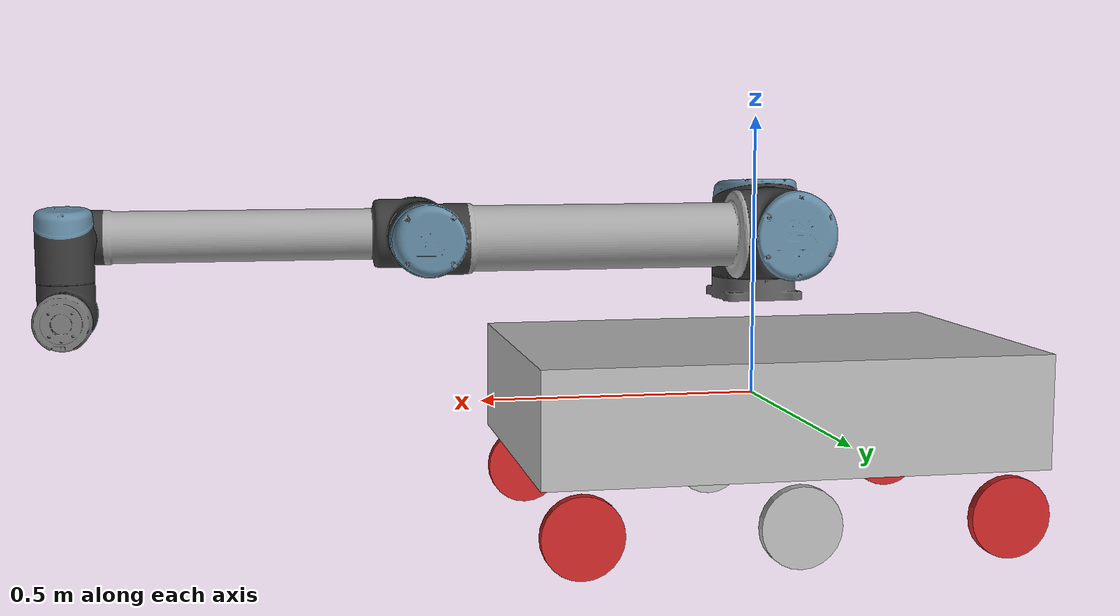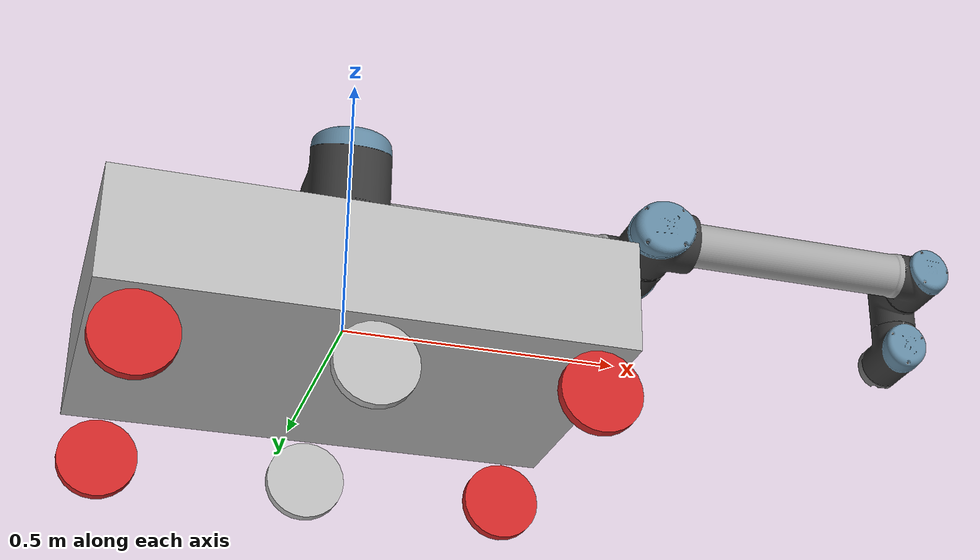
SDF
<sdf version='1.6'>
  <model name='mobile_ur10'>
    <link name='chassis'>
      <pose frame=''>0 0 0 0 -0 0</pose>
      <inertial>
        <pose frame=''>0 0 0.00429 0 -0 0</pose>
        <mass>69.8833</mass>
        <inertia>
          <ixx>2.37636</ixx>
          <ixy>0</ixy>
          <ixz>0</ixz>
          <iyy>4.93351</iyy>
          <iyz>-1.39888e-14</iyz>
          <izz>6.48737</izz>
        </inertia>
      </inertial>
      <collision name='chassis_fixed_joint_lump__collision_collision'>
        <pose frame=''>0 0 0 0 -0 0</pose>
        <geometry>
          <box>
            <size>0.89 0.58 0.2</size>
          </box>
        </geometry>
      </collision>
      <collision name='chassis_fixed_joint_lump__base_link_collision_1'>
        <pose frame=''>0 0 0.176 0 -0 0</pose>
        <geometry>
          <mesh>
            <scale>1 1 1</scale>
            <uri>model://ur_description/meshes/ur10/collision/base.stl</uri>
          </mesh>
        </geometry>
      </collision>
      <collision name='chassis_fixed_joint_lump__wheel_1_link_collision_2'>
        <pose frame=''>0.374 0.28 -0.181 -1.5708 0 0</pose>
        <geometry>
          <cylinder>
            <length>0.02</length>
            <radius>0.071</radius>
          </cylinder>
        </geometry>
        <surface>
          <contact>
            <ode/>
          </contact>
          <friction>
            <ode>
              <mu>0</mu>
              <mu2>0</mu2>
            </ode>
          </friction>
        </surface>
      </collision>
      <collision name='chassis_fixed_joint_lump__wheel_3_link_collision_3'>
        <pose frame=''>-0.374 0.28 -0.181 -1.5708 0 0</pose>
        <geometry>
          <cylinder>
            <length>0.02</length>
            <radius>0.071</radius>
          </cylinder>
        </geometry>
        <surface>
          <contact>
            <ode/>
          </contact>
          <friction>
            <ode>
              <mu>0</mu>
              <mu2>0</mu2>
            </ode>
          </friction>
        </surface>
      </collision>
      <collision name='chassis_fixed_joint_lump__wheel_4_link_collision_4'>
        <pose frame=''>-0.374 -0.28 -0.181 -1.5708 0 0</pose>
        <geometry>
          <cylinder>
            <length>0.02</length>
            <radius>0.071</radius>
          </cylinder>
        </geometry>
        <surface>
          <contact>
            <ode/>
          </contact>
          <friction>
            <ode>
              <mu>0</mu>
              <mu2>0</mu2>
            </ode>
          </friction>
        </surface>
      </collision>
      <collision name='chassis_fixed_joint_lump__wheel_6_link_collision_5'>
        <pose frame=''>0.374 -0.28 -0.181 -1.5708 0 0</pose>
        <geometry>
          <cylinder>
            <length>0.02</length>
            <radius>0.071</radius>
          </cylinder>
        </geometry>
        <surface>
          <contact>
            <ode/>
          </contact>
          <friction>
            <ode>
              <mu>0</mu>
              <mu2>0</mu2>
            </ode>
          </friction>
        </surface>
      </collision>
      <visual name='chassis_fixed_joint_lump__visual_visual'>
        <pose frame=''>0 0 0 0 -0 0</pose>
        <geometry>
          <box>
            <size>0.89 0.58 0.2</size>
          </box>
        </geometry>
      </visual>
      <visual name='chassis_fixed_joint_lump__base_link_visual_1'>
        <pose frame=''>0 0 0.176 0 -0 0</pose>
        <geometry>
          <mesh>
            <scale>1 1 1</scale>
            <uri>model://ur_description/meshes/ur10/visual/base.dae</uri>
          </mesh>
        </geometry>
      </visual>
      <visual name='chassis_fixed_joint_lump__wheel_1_link_visual_2'>
        <pose frame=''>0.374 0.28 -0.181 -1.5708 0 0</pose>
        <geometry>
          <cylinder>
            <length>0.02</length>
            <radius>0.071</radius>
          </cylinder>
        </geometry>
        <material>
          <script>
            <name>Gazebo/Red</name>
            <uri>file://media/materials/scripts/gazebo.material</uri>
          </script>
        </material>
      </visual>
      <visual name='chassis_fixed_joint_lump__wheel_3_link_visual_3'>
        <pose frame=''>-0.374 0.28 -0.181 -1.5708 0 0</pose>
        <geometry>
          <cylinder>
            <length>0.02</length>
            <radius>0.071</radius>
          </cylinder>
        </geometry>
        <material>
          <script>
            <name>Gazebo/Red</name>
            <uri>file://media/materials/scripts/gazebo.material</uri>
          </script>
        </material>
      </visual>
      <visual name='chassis_fixed_joint_lump__wheel_4_link_visual_4'>
        <pose frame=''>-0.374 -0.28 -0.181 -1.5708 0 0</pose>
        <geometry>
          <cylinder>
            <length>0.02</length>
            <radius>0.071</radius>
          </cylinder>
        </geometry>
        <material>
          <script>
            <name>Gazebo/Red</name>
            <uri>file://media/materials/scripts/gazebo.material</uri>
          </script>
        </material>
      </visual>
      <visual name='chassis_fixed_joint_lump__wheel_6_link_visual_5'>
        <pose frame=''>0.374 -0.28 -0.181 -1.5708 0 0</pose>
        <geometry>
          <cylinder>
            <length>0.02</length>
            <radius>0.071</radius>
          </cylinder>
        </geometry>
        <material>
          <script>
            <name>Gazebo/Red</name>
            <uri>file://media/materials/scripts/gazebo.material</uri>
          </script>
        </material>
      </visual>
      <velocity_decay/>
      <velocity_decay/>
      <velocity_decay/>
      <gravity>1</gravity>
      <velocity_decay/>
    </link>
    <link name='shoulder_link'>
      <pose frame=''>0 0 0.3033 0 -0 0</pose>
      <inertial>
        <pose frame=''>0 0 0 0 -0 0</pose>
        <mass>7.778</mass>
        <inertia>
          <ixx>0.0314743</ixx>
          <ixy>0</ixy>
          <ixz>0</ixz>
          <iyy>0.0314743</iyy>
          <iyz>0</iyz>
          <izz>0.0218756</izz>
        </inertia>
      </inertial>
      <collision name='shoulder_link_collision'>
        <pose frame=''>0 0 0 0 -0 0</pose>
        <geometry>
          <mesh>
            <scale>1 1 1</scale>
            <uri>model://ur_description/meshes/ur10/collision/shoulder.stl</uri>
          </mesh>
        </geometry>
      </collision>
      <visual name='shoulder_link_visual'>
        <pose frame=''>0 0 0 0 -0 0</pose>
        <geometry>
          <mesh>
            <scale>1 1 1</scale>
            <uri>model://ur_description/meshes/ur10/visual/shoulder.dae</uri>
          </mesh>
        </geometry>
      </visual>
    </link>
    <joint name='shoulder_pan_joint' type='revolute'>
      <child>shoulder_link</child>
      <parent>chassis</parent>
      <axis>
        <xyz>0 0 1</xyz>
        <limit>
          <lower>-6.28319</lower>
          <upper>6.28319</upper>
          <effort>330</effort>
          <velocity>2.16</velocity>
        </limit>
        <dynamics>
          <damping>0</damping>
          <friction>0</friction>
          <spring_reference>0</spring_reference>
          <spring_stiffness>0</spring_stiffness>
        </dynamics>
        <use_parent_model_frame>1</use_parent_model_frame>
      </axis>
    </joint>
    <link name='upper_arm_link'>
      <pose frame=''>0 0.220941 0.3033 3.14159 1.57079 3.14159</pose>
      <inertial>
        <pose frame=''>0 0 0.306 0 -0 0</pose>
        <mass>12.93</mass>
        <inertia>
          <ixx>0.421754</ixx>
          <ixy>0</ixy>
          <ixz>0</ixz>
          <iyy>0.421754</iyy>
          <iyz>0</iyz>
          <izz>0.0363656</izz>
        </inertia>
      </inertial>
      <collision name='upper_arm_link_collision'>
        <pose frame=''>0 0 0 0 -0 0</pose>
        <geometry>
          <mesh>
            <scale>1 1 1</scale>
            <uri>model://ur_description/meshes/ur10/collision/upperarm.stl</uri>
          </mesh>
        </geometry>
      </collision>
      <visual name='upper_arm_link_visual'>
        <pose frame=''>0 0 0 0 -0 0</pose>
        <geometry>
          <mesh>
            <scale>1 1 1</scale>
            <uri>model://ur_description/meshes/ur10/visual/upperarm.dae</uri>
          </mesh>
        </geometry>
      </visual>
    </link>
    <joint name='shoulder_lift_joint' type='revolute'>
      <child>upper_arm_link</child>
      <parent>shoulder_link</parent>
      <axis>
        <xyz>0 1 0</xyz>
        <limit>
          <lower>-6.28319</lower>
          <upper>6.28319</upper>
          <effort>330</effort>
          <velocity>2.16</velocity>
        </limit>
        <dynamics>
          <damping>0</damping>
          <friction>0</friction>
          <spring_reference>0</spring_reference>
          <spring_stiffness>0</spring_stiffness>
        </dynamics>
        <use_parent_model_frame>1</use_parent_model_frame>
      </axis>
    </joint>
    <link name='forearm_link'>
      <pose frame=''>0.612 0.049041 0.3033 3.14159 1.57079 3.14159</pose>
      <inertial>
        <pose frame=''>0 0 0.28615 0 -0 0</pose>
        <mass>3.87</mass>
        <inertia>
          <ixx>0.11107</ixx>
          <ixy>0</ixy>
          <ixz>0</ixz>
          <iyy>0.11107</iyy>
          <iyz>0</iyz>
          <izz>0.0108844</izz>
        </inertia>
      </inertial>
      <collision name='forearm_link_collision'>
        <pose frame=''>0 0 0 0 -0 0</pose>
        <geometry>
          <mesh>
            <scale>1 1 1</scale>
            <uri>model://ur_description/meshes/ur10/collision/forearm.stl</uri>
          </mesh>
        </geometry>
      </collision>
      <visual name='forearm_link_visual'>
        <pose frame=''>0 0 0 0 -0 0</pose>
        <geometry>
          <mesh>
            <scale>1 1 1</scale>
            <uri>model://ur_description/meshes/ur10/visual/forearm.dae</uri>
          </mesh>
        </geometry>
      </visual>
    </link>
    <joint name='elbow_joint' type='revolute'>
      <child>forearm_link</child>
      <parent>upper_arm_link</parent>
      <axis>
        <xyz>0 1 0</xyz>
        <limit>
          <lower>-3.14159</lower>
          <upper>3.14159</upper>
          <effort>150</effort>
          <velocity>3.15</velocity>
        </limit>
        <dynamics>
          <damping>0</damping>
          <friction>0</friction>
          <spring_reference>0</spring_reference>
          <spring_stiffness>0</spring_stiffness>
        </dynamics>
        <use_parent_model_frame>1</use_parent_model_frame>
      </axis>
    </joint>
    <link name='wrist_1_link'>
      <pose frame=''>1.1843 0.049041 0.3033 3.14159 -0 3.14159</pose>
      <inertial>
        <pose frame=''>0 0 0 0 -0 0</pose>
        <mass>1.96</mass>
        <inertia>
          <ixx>0.00510825</ixx>
          <ixy>0</ixy>
          <ixz>0</ixz>
          <iyy>0.00510825</iyy>
          <iyz>0</iyz>
          <izz>0.0055125</izz>
        </inertia>
      </inertial>
      <collision name='wrist_1_link_collision'>
        <pose frame=''>0 0 0 0 -0 0</pose>
        <geometry>
          <mesh>
            <scale>1 1 1</scale>
            <uri>model://ur_description/meshes/ur10/collision/wrist1.stl</uri>
          </mesh>
        </geometry>
      </collision>
      <visual name='wrist_1_link_visual'>
        <pose frame=''>0 0 0 0 -0 0</pose>
        <geometry>
          <mesh>
            <scale>1 1 1</scale>
            <uri>model://ur_description/meshes/ur10/visual/wrist1.dae</uri>
          </mesh>
        </geometry>
      </visual>
    </link>
    <joint name='wrist_1_joint' type='revolute'>
      <child>wrist_1_link</child>
      <parent>forearm_link</parent>
      <axis>
        <xyz>0 1 0</xyz>
        <limit>
          <lower>-6.28319</lower>
          <upper>6.28319</upper>
          <effort>54</effort>
          <velocity>3.2</velocity>
        </limit>
        <dynamics>
          <damping>0</damping>
          <friction>0</friction>
          <spring_reference>0</spring_reference>
          <spring_stiffness>0</spring_stiffness>
        </dynamics>
        <use_parent_model_frame>1</use_parent_model_frame>
      </axis>
    </joint>
    <link name='wrist_2_link'>
      <pose frame=''>1.1843 0.163941 0.3033 3.14159 -0 3.14159</pose>
      <inertial>
        <pose frame=''>0 0 0 0 -0 0</pose>
        <mass>1.96</mass>
        <inertia>
          <ixx>0.00510825</ixx>
          <ixy>0</ixy>
          <ixz>0</ixz>
          <iyy>0.00510825</iyy>
          <iyz>0</iyz>
          <izz>0.0055125</izz>
        </inertia>
      </inertial>
      <collision name='wrist_2_link_collision'>
        <pose frame=''>0 0 0 0 -0 0</pose>
        <geometry>
          <mesh>
            <scale>1 1 1</scale>
            <uri>model://ur_description/meshes/ur10/collision/wrist2.stl</uri>
          </mesh>
        </geometry>
      </collision>
      <visual name='wrist_2_link_visual'>
        <pose frame=''>0 0 0 0 -0 0</pose>
        <geometry>
          <mesh>
            <scale>1 1 1</scale>
            <uri>model://ur_description/meshes/ur10/visual/wrist2.dae</uri>
          </mesh>
        </geometry>
      </visual>
    </link>
    <joint name='wrist_2_joint' type='revolute'>
      <child>wrist_2_link</child>
      <parent>wrist_1_link</parent>
      <axis>
        <xyz>-0 0 -1</xyz>
        <limit>
          <lower>-6.28319</lower>
          <upper>6.28319</upper>
          <effort>54</effort>
          <velocity>3.2</velocity>
        </limit>
        <dynamics>
          <damping>0</damping>
          <friction>0</friction>
          <spring_reference>0</spring_reference>
          <spring_stiffness>0</spring_stiffness>
        </dynamics>
        <use_parent_model_frame>1</use_parent_model_frame>
      </axis>
    </joint>
    <link name='wrist_3_link'>
      <pose frame=''>1.1843 0.163941 0.1876 3.14159 -0 3.14159</pose>
      <inertial>
        <pose frame=''>0 0 0 0 -0 0</pose>
        <mass>0.202</mass>
        <inertia>
          <ixx>0.000526462</ixx>
          <ixy>0</ixy>
          <ixz>0</ixz>
          <iyy>0.000526462</iyy>
          <iyz>0</iyz>
          <izz>0.000568125</izz>
        </inertia>
      </inertial>
      <collision name='wrist_3_link_collision'>
        <pose frame=''>0 0 0 0 -0 0</pose>
        <geometry>
          <mesh>
            <scale>1 1 1</scale>
            <uri>model://ur_description/meshes/ur10/collision/wrist3.stl</uri>
          </mesh>
        </geometry>
      </collision>
      <collision name='wrist_3_link_fixed_joint_lump__ee_link_collision_1'>
        <pose frame=''>0 0.0822 0 0 -0 1.5708</pose>
        <geometry>
          <box>
            <size>0.01 0.01 0.01</size>
          </box>
        </geometry>
      </collision>
      <visual name='wrist_3_link_visual'>
        <pose frame=''>0 0 0 0 -0 0</pose>
        <geometry>
          <mesh>
            <scale>1 1 1</scale>
            <uri>model://ur_description/meshes/ur10/visual/wrist3.dae</uri>
          </mesh>
        </geometry>
      </visual>
    </link>
    <joint name='wrist_3_joint' type='revolute'>
      <child>wrist_3_link</child>
      <parent>wrist_2_link</parent>
      <axis>
        <xyz>0 1 0</xyz>
        <limit>
          <lower>-6.28319</lower>
          <upper>6.28319</upper>
          <effort>54</effort>
          <velocity>3.2</velocity>
        </limit>
        <dynamics>
          <damping>0</damping>
          <friction>0</friction>
          <spring_reference>0</spring_reference>
          <spring_stiffness>0</spring_stiffness>
        </dynamics>
        <use_parent_model_frame>1</use_parent_model_frame>
      </axis>
    </joint>
    <link name='wheel_2_link'>
      <pose frame=''>0 0.28 -0.181 -1.5708 0 0</pose>
      <inertial>
        <pose frame=''>0 0 0 0 -0 0</pose>
        <mass>0.558333</mass>
        <inertia>
          <ixx>0.000722251</ixx>
          <ixy>0</ixy>
          <ixz>0</ixz>
          <iyy>0.000722251</iyy>
          <iyz>0</iyz>
          <izz>0.00140728</izz>
        </inertia>
      </inertial>
      <collision name='wheel_2_link_collision'>
        <pose frame=''>0 0 0 0 -0 0</pose>
        <geometry>
          <cylinder>
            <length>0.02</length>
            <radius>0.071</radius>
          </cylinder>
        </geometry>
      </collision>
      <visual name='wheel_2_link_visual'>
        <pose frame=''>0 0 0 0 -0 0</pose>
        <geometry>
          <cylinder>
            <length>0.02</length>
            <radius>0.071</radius>
          </cylinder>
        </geometry>
      </visual>
    </link>
    <joint name='wheel_2_joint' type='revolute'>
      <child>wheel_2_link</child>
      <parent>chassis</parent>
      <axis>
        <xyz>0 1 -0</xyz>
        <limit>
          <lower>-1e+16</lower>
          <upper>1e+16</upper>
        </limit>
        <dynamics>
          <spring_reference>0</spring_reference>
          <spring_stiffness>0</spring_stiffness>
        </dynamics>
        <use_parent_model_frame>1</use_parent_model_frame>
      </axis>
    </joint>
    <link name='wheel_5_link'>
      <pose frame=''>0 -0.28 -0.181 -1.5708 0 0</pose>
      <inertial>
        <pose frame=''>0 0 0 0 -0 0</pose>
        <mass>0.558333</mass>
        <inertia>
          <ixx>0.000722251</ixx>
          <ixy>0</ixy>
          <ixz>0</ixz>
          <iyy>0.000722251</iyy>
          <iyz>0</iyz>
          <izz>0.00140728</izz>
        </inertia>
      </inertial>
      <collision name='wheel_5_link_collision'>
        <pose frame=''>0 0 0 0 -0 0</pose>
        <geometry>
          <cylinder>
            <length>0.02</length>
            <radius>0.071</radius>
          </cylinder>
        </geometry>
      </collision>
      <visual name='wheel_5_link_visual'>
        <pose frame=''>0 0 0 0 -0 0</pose>
        <geometry>
          <cylinder>
            <length>0.02</length>
            <radius>0.071</radius>
          </cylinder>
        </geometry>
      </visual>
    </link>
    <joint name='wheel_5_joint' type='revolute'>
      <child>wheel_5_link</child>
      <parent>chassis</parent>
      <axis>
        <xyz>0 1 -0</xyz>
        <limit>
          <lower>-1e+16</lower>
          <upper>1e+16</upper>
        </limit>
        <dynamics>
          <spring_reference>0</spring_reference>
          <spring_stiffness>0</spring_stiffness>
        </dynamics>
        <use_parent_model_frame>1</use_parent_model_frame>
      </axis>
    </joint>
    <static>0</static>
    <self_collide>0</self_collide>
    <preserveWorldVelocity>1</preserveWorldVelocity>
    <plugin name='differential_drive_controller' filename='libgazebo_ros_diff_drive.so'>
      <leftJoint>wheel_2_joint</leftJoint>
      <rightJoint>wheel_5_joint</rightJoint>
      <robotBaseFrame>chassis</robotBaseFrame>
      <wheelSeparation>0.56</wheelSeparation>
      <wheelDiameter>0.142</wheelDiameter>
      <publishWheelJointState>1</publishWheelJointState>
      <legacyMode>0</legacyMode>
    </plugin>
    <plugin name='ros_control' filename='libgazebo_ros_control.so'/>
  </model>
</sdf>
